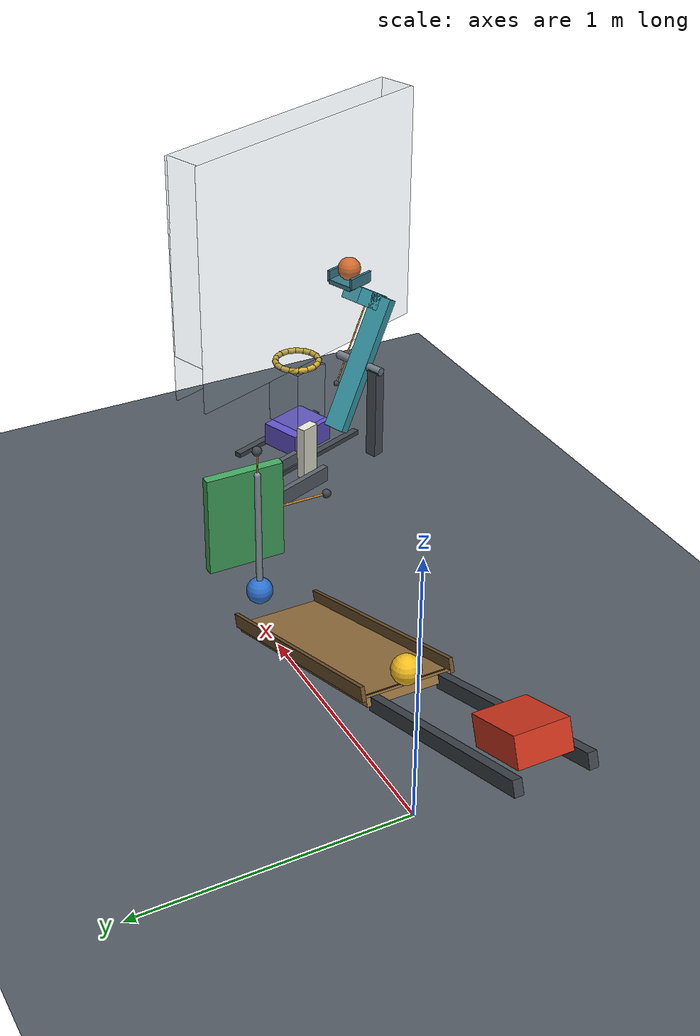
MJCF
<mujoco model="revised_chain_clearance">
  <compiler angle="degree" autolimits="true" inertiafromgeom="true"/>
  <option timestep="0.002" gravity="0 0 -9.81" integrator="implicitfast" solver="Newton" iterations="100" tolerance="1e-10"/>

  <visual>
    <global azimuth="135" elevation="-25"/>
    <headlight ambient="0.4 0.4 0.4" diffuse="0.7 0.7 0.7" specular="0.2 0.2 0.2"/>
  </visual>

  <!-- Contact damping approximates restitution 0.05. -->
  <!-- Explicit ball-floor contacts add rolling resistance without changing ramp contacts. -->
  <!-- Passive counterbalance and over-center springs assist the triggered stages. -->

  <worldbody>
    <light name="main_light" pos="0 -2 5" dir="0 0 -1" directional="true"/>
    <camera name="overview" pos="4 -5 3" xyaxes="0.780869 0.624695 0 -0.267261 0.334076 0.903696"/>
    <geom name="floor" type="plane" pos="0 0 0" size="5 5 0.1" friction="0.68 0.005 0.0001" condim="3" solref="0.008 0.690107" rgba="0.32 0.35 0.38 1"/>

    <!-- Initial axial spring compression is 0.20 m. -->
    <!-- The spherical nose reaches ball1 at approximately 0.50 m displacement. -->
    <body name="cart1" pos="-0.542789 0 0.764738" quat="0.984807753 0 0.173648178 0">
      <joint name="cart1_slide" type="slide" axis="1 0 0" range="0 0.60" stiffness="18" springref="0.20" damping="0.20" solreflimit="0.006 1"/>
      <geom name="cart1_chassis" type="box" pos="-0.01 0 0" size="0.11 0.09 0.05" mass="0.475" friction="0.68 0.005 0.0001" condim="3" solref="0.008 0.690107" rgba="0.85 0.22 0.12 1"/>
      <geom name="cart1_lifting_nose" type="sphere" pos="0.096557 0 -0.04" size="0.025" mass="0.025" friction="0.68 0.005 0.0001" condim="3" solref="0.008 0.690107" rgba="0.95 0.38 0.16 1"/>
    </body>

    <body name="cart1_track" pos="-0.315570 0 0.628828" quat="0.984807753 0 0.173648178 0">
      <geom name="cart1_track_left" type="box" pos="0 0.12 -0.025" size="0.42 0.015 0.025" contype="0" conaffinity="0" rgba="0.25 0.28 0.31 1"/>
      <geom name="cart1_track_right" type="box" pos="0 -0.12 -0.025" size="0.42 0.015 0.025" contype="0" conaffinity="0" rgba="0.25 0.28 0.31 1"/>
    </body>

    <!-- Surface length 1.00 m, width 0.30 m, inclination 20 degrees. -->
    <!-- Downhill surface endpoint is (1, 0, 0.15). -->
    <body name="ramp1" pos="0.525023 0 0.306915" quat="0.984807753 0 0.173648178 0">
      <geom name="ramp1_surface" type="box" size="0.50 0.15 0.015" friction="0.68 0.005 0.0001" condim="3" solref="0.008 0.690107" rgba="0.62 0.47 0.26 1"/>
      <geom name="ramp1_retaining_lip" type="cylinder" pos="-0.48 0 0.017" quat="0.707106781 0.707106781 0 0" size="0.002 0.145" friction="0.68 0.005 0.0001" condim="3" solref="0.008 0.690107" rgba="0.45 0.33 0.18 1"/>
      <geom name="ramp1_left_edge" type="box" pos="0 0.157 0.03" size="0.50 0.007 0.025" friction="0.68 0.005 0.0001" condim="3" solref="0.008 0.690107" rgba="0.45 0.33 0.18 1"/>
      <geom name="ramp1_right_edge" type="box" pos="0 -0.157 0.03" size="0.50 0.007 0.025" friction="0.68 0.005 0.0001" condim="3" solref="0.008 0.690107" rgba="0.45 0.33 0.18 1"/>
    </body>

    <body name="ball1" pos="0.077408 0 0.539005">
      <freejoint name="ball1_free"/>
      <geom name="ball1_sphere" type="sphere" size="0.05" mass="0.20" friction="0.68 0.005 0.0001" condim="3" solref="0.008 0.690107" rgba="0.96 0.74 0.12 1"/>
    </body>

    <!-- Initial nearest bob surface is 0.10 m beyond the ramp endpoint. -->
    <!-- Hinge-to-bob-center length 0.50 m; total mass 0.35 kg. -->
    <body name="pendulum1" pos="1.15 0 0.65">
      <joint name="pendulum1_hinge" type="hinge" axis="0 1 0" range="-42 0" damping="0.04" frictionloss="0.002" solreflimit="0.006 1"/>
      <geom name="pendulum1_rod" type="capsule" fromto="0 0 0 0 0 -0.45" size="0.012" mass="0.03" friction="0.68 0.005 0.0001" condim="3" solref="0.008 0.690107" rgba="0.55 0.59 0.64 1"/>
      <geom name="pendulum1_bob" type="sphere" pos="0 0 -0.50" size="0.05" mass="0.32" friction="0.68 0.005 0.0001" condim="3" solref="0.008 0.690107" rgba="0.18 0.45 0.82 1"/>
      <site name="pendulum1_spring_attachment" pos="0 0 -0.50" size="0.004" rgba="0.9 0.6 0.2 1"/>
    </body>

    <body name="pendulum1_anchor" pos="1.15 0 0.75">
      <geom name="pendulum1_anchor_cap" type="sphere" size="0.018" contype="0" conaffinity="0" rgba="0.25 0.28 0.31 1"/>
      <site name="pendulum1_spring_anchor" pos="0 0 0" size="0.004" rgba="0.9 0.6 0.2 1"/>
    </body>

    <!-- Door contact occurs at approximately 40 degrees of pendulum swing. -->
    <!-- Panel dimensions: 0.42 m high, 0.32 m wide, 0.04 m thick. -->
    <body name="door1" pos="1.541394 -0.28 0.002">
      <joint name="door1_hinge" type="hinge" axis="0 0 1" range="-70 0" damping="0.04" frictionloss="0.03" solreflimit="0.004 1" solimplimit="0.99 0.999 0.001"/>
      <geom name="door1_panel" type="box" pos="0 0.16 0.21" size="0.02 0.16 0.21" mass="0.45" friction="0.68 0.005 0.0001" condim="3" solref="0.008 0.690107" rgba="0.26 0.66 0.37 1"/>
      <site name="door1_spring_attachment" pos="0 0.30 0.21" size="0.004" rgba="0.9 0.6 0.2 1"/>
    </body>

    <body name="door1_anchor" pos="1.541394 -0.48 0.212">
      <geom name="door1_anchor_cap" type="sphere" size="0.018" contype="0" conaffinity="0" rgba="0.25 0.28 0.31 1"/>
      <site name="door1_spring_anchor" pos="0 0 0" size="0.004" rgba="0.9 0.6 0.2 1"/>
    </body>

    <!-- Downstream local x direction is (0.342020, -0.939693, 0). -->
    <body name="block1" pos="1.866032 -0.236331 0.06" quat="0.819152044 0 0 -0.573576436">
      <freejoint name="block1_free"/>
      <geom name="block1_cube" type="box" size="0.06 0.06 0.06" mass="0.35" friction="0.68 0.005 0.0001" condim="3" solref="0.008 0.690107" rgba="0.73 0.24 0.57 1"/>
    </body>

    <!-- Rails now start 0.10 m ahead of the initial block center. -->
    <!-- This leaves the complete door sweep unobstructed. -->
    <body name="block1_guide" pos="1.958377 -0.490048 0.035" quat="0.819152044 0 0 -0.573576436">
      <geom name="block1_guide_left" type="box" pos="0 0.085 0" size="0.17 0.012 0.035" friction="0.68 0.005 0.0001" condim="3" solref="0.008 0.690107" rgba="0.35 0.38 0.42 1"/>
      <geom name="block1_guide_right" type="box" pos="0 -0.085 0" size="0.17 0.012 0.035" friction="0.68 0.005 0.0001" condim="3" solref="0.008 0.690107" rgba="0.35 0.38 0.42 1"/>
    </body>

    <!-- Initial block-to-domino face separation is 0.32 m. -->
    <body name="domino1" pos="2.009680 -0.630002 0.12" quat="0.819152044 0 0 -0.573576436">
      <freejoint name="domino1_free"/>
      <geom name="domino1_tile" type="box" size="0.04 0.02 0.12" mass="0.25" friction="0.68 0.005 0.0001" condim="3" solref="0.008 0.690107" rgba="0.92 0.91 0.84 1"/>
    </body>

    <!-- Initial beam inclination is 60 degrees toward the right end. -->
    <!-- Its left endpoint lies 0.18 m downstream of domino1. -->
    <!-- Total lever mass, including its right-end tray, is 0.50 kg. -->
    <body name="lever1" pos="2.122547 -0.940101 0.409808" quat="0.709406480 -0.286788218 -0.409576022 -0.496731765">
      <joint name="lever1_hinge" type="hinge" axis="0 -1 0" range="0 45" damping="0.04" solreflimit="0.004 1" solimplimit="0.99 0.999 0.001"/>
      <geom name="lever1_beam" type="box" size="0.30 0.05 0.02" mass="0.44" conaffinity="3" friction="0.68 0.005 0.0001" condim="3" solref="0.008 0.690107" rgba="0.22 0.62 0.68 1"/>
      <geom name="lever1_outrigger" type="box" pos="0.27 0.10 0" size="0.035 0.10 0.02" mass="0.02" conaffinity="3" friction="0.68 0.005 0.0001" condim="3" solref="0.008 0.690107" rgba="0.22 0.62 0.68 1"/>
      <geom name="lever1_ball_platform" type="box" pos="0.308660 0.20 0.005" quat="0.866025404 0 0.5 0" size="0.062 0.060 0.010" mass="0.025" conaffinity="3" friction="0.68 0.005 0.0001" condim="3" solref="0.008 0.690107" rgba="0.18 0.49 0.55 1"/>
      <geom name="lever1_platform_left" type="box" pos="0.330311 0.265 0.0175" quat="0.866025404 0 0.5 0" size="0.062 0.006 0.025" mass="0.0075" conaffinity="3" friction="0.68 0.005 0.0001" condim="3" solref="0.008 0.690107" rgba="0.18 0.49 0.55 1"/>
      <geom name="lever1_platform_right" type="box" pos="0.330311 0.135 0.0175" quat="0.866025404 0 0.5 0" size="0.062 0.006 0.025" mass="0.0075" conaffinity="3" friction="0.68 0.005 0.0001" condim="3" solref="0.008 0.690107" rgba="0.18 0.49 0.55 1"/>
      <site name="lever1_spring_attachment" pos="0.24 0.08 0" size="0.004" rgba="0.9 0.6 0.2 1"/>
    </body>

    <body name="lever1_support" pos="2.122547 -0.940101 0.204904" quat="0.819152044 0 0 -0.573576436">
      <geom name="lever1_support_post" type="box" pos="0 -0.09 0" size="0.025 0.025 0.204904" contype="0" conaffinity="0" rgba="0.30 0.33 0.37 1"/>
      <geom name="lever1_support_axle" type="cylinder" pos="0 0 0.204904" quat="0.707106781 0.707106781 0 0" size="0.018 0.12" contype="0" conaffinity="0" rgba="0.45 0.49 0.54 1"/>
    </body>

    <body name="lever1_anchor" pos="2.177201 -0.856357 0.305885">
      <geom name="lever1_anchor_cap" type="sphere" size="0.012" contype="0" conaffinity="0" rgba="0.25 0.28 0.31 1"/>
      <site name="lever1_spring_anchor" pos="0 0 0" size="0.004" rgba="0.9 0.6 0.2 1"/>
    </body>

    <body name="ball2" pos="2.361789 -1.012651 0.739808">
      <freejoint name="ball2_free"/>
      <geom name="ball2_sphere" type="sphere" size="0.05" mass="0.20" contype="2" conaffinity="13" friction="0.68 0.005 0.0001" condim="3" solref="0.008 0.690107" rgba="0.95 0.43 0.12 1"/>
    </body>

    <!-- Capsule ring has approximately 0.160 m minimum clear diameter. -->
    <!-- Its center is 0.32 m below ball2's initial center. -->
    <body name="ring1" pos="2.248922 -0.702552 0.419808">
      <geom name="ring1_segment00" type="capsule" fromto="0.093807 0 0 0.086668 0.035899 0" size="0.012" contype="4" conaffinity="2" friction="0.68 0.005 0.0001" condim="3" solref="0.008 0.690107" rgba="0.83 0.69 0.19 1"/>
      <geom name="ring1_segment01" type="capsule" fromto="0.086668 0.035899 0 0.066331 0.066331 0" size="0.012" contype="4" conaffinity="2" friction="0.68 0.005 0.0001" condim="3" solref="0.008 0.690107" rgba="0.83 0.69 0.19 1"/>
      <geom name="ring1_segment02" type="capsule" fromto="0.066331 0.066331 0 0.035899 0.086668 0" size="0.012" contype="4" conaffinity="2" friction="0.68 0.005 0.0001" condim="3" solref="0.008 0.690107" rgba="0.83 0.69 0.19 1"/>
      <geom name="ring1_segment03" type="capsule" fromto="0.035899 0.086668 0 0 0.093807 0" size="0.012" contype="4" conaffinity="2" friction="0.68 0.005 0.0001" condim="3" solref="0.008 0.690107" rgba="0.83 0.69 0.19 1"/>
      <geom name="ring1_segment04" type="capsule" fromto="0 0.093807 0 -0.035899 0.086668 0" size="0.012" contype="4" conaffinity="2" friction="0.68 0.005 0.0001" condim="3" solref="0.008 0.690107" rgba="0.83 0.69 0.19 1"/>
      <geom name="ring1_segment05" type="capsule" fromto="-0.035899 0.086668 0 -0.066331 0.066331 0" size="0.012" contype="4" conaffinity="2" friction="0.68 0.005 0.0001" condim="3" solref="0.008 0.690107" rgba="0.83 0.69 0.19 1"/>
      <geom name="ring1_segment06" type="capsule" fromto="-0.066331 0.066331 0 -0.086668 0.035899 0" size="0.012" contype="4" conaffinity="2" friction="0.68 0.005 0.0001" condim="3" solref="0.008 0.690107" rgba="0.83 0.69 0.19 1"/>
      <geom name="ring1_segment07" type="capsule" fromto="-0.086668 0.035899 0 -0.093807 0 0" size="0.012" contype="4" conaffinity="2" friction="0.68 0.005 0.0001" condim="3" solref="0.008 0.690107" rgba="0.83 0.69 0.19 1"/>
      <geom name="ring1_segment08" type="capsule" fromto="-0.093807 0 0 -0.086668 -0.035899 0" size="0.012" contype="4" conaffinity="2" friction="0.68 0.005 0.0001" condim="3" solref="0.008 0.690107" rgba="0.83 0.69 0.19 1"/>
      <geom name="ring1_segment09" type="capsule" fromto="-0.086668 -0.035899 0 -0.066331 -0.066331 0" size="0.012" contype="4" conaffinity="2" friction="0.68 0.005 0.0001" condim="3" solref="0.008 0.690107" rgba="0.83 0.69 0.19 1"/>
      <geom name="ring1_segment10" type="capsule" fromto="-0.066331 -0.066331 0 -0.035899 -0.086668 0" size="0.012" contype="4" conaffinity="2" friction="0.68 0.005 0.0001" condim="3" solref="0.008 0.690107" rgba="0.83 0.69 0.19 1"/>
      <geom name="ring1_segment11" type="capsule" fromto="-0.035899 -0.086668 0 0 -0.093807 0" size="0.012" contype="4" conaffinity="2" friction="0.68 0.005 0.0001" condim="3" solref="0.008 0.690107" rgba="0.83 0.69 0.19 1"/>
      <geom name="ring1_segment12" type="capsule" fromto="0 -0.093807 0 0.035899 -0.086668 0" size="0.012" contype="4" conaffinity="2" friction="0.68 0.005 0.0001" condim="3" solref="0.008 0.690107" rgba="0.83 0.69 0.19 1"/>
      <geom name="ring1_segment13" type="capsule" fromto="0.035899 -0.086668 0 0.066331 -0.066331 0" size="0.012" contype="4" conaffinity="2" friction="0.68 0.005 0.0001" condim="3" solref="0.008 0.690107" rgba="0.83 0.69 0.19 1"/>
      <geom name="ring1_segment14" type="capsule" fromto="0.066331 -0.066331 0 0.086668 -0.035899 0" size="0.012" contype="4" conaffinity="2" friction="0.68 0.005 0.0001" condim="3" solref="0.008 0.690107" rgba="0.83 0.69 0.19 1"/>
      <geom name="ring1_segment15" type="capsule" fromto="0.086668 -0.035899 0 0.093807 0 0" size="0.012" contype="4" conaffinity="2" friction="0.68 0.005 0.0001" condim="3" solref="0.008 0.690107" rgba="0.83 0.69 0.19 1"/>
    </body>

    <!-- Passive catch channel and downstream sleeve interact only with ball2. -->
    <body name="ball2_guide" pos="2.248922 -0.702552 0.419808" quat="0.819152044 0 0 -0.573576436">
      <geom name="ball2_guide_right_slope" type="box" pos="0.3275 0 0.130192" quat="0.819911 0 0.572491 0" size="0.006 0.082 0.290269" contype="4" conaffinity="2" friction="0.68 0.005 0.0001" condim="3" solref="0.008 0.690107" rgba="0.55 0.65 0.72 0.25"/>
      <geom name="ball2_guide_left_slope" type="box" pos="-0.3275 0 0.130192" quat="0.819911 0 -0.572491 0" size="0.006 0.082 0.290269" contype="4" conaffinity="2" friction="0.68 0.005 0.0001" condim="3" solref="0.008 0.690107" rgba="0.55 0.65 0.72 0.25"/>
      <geom name="ball2_guide_right_wall" type="box" pos="0.615 0 0.655192" size="0.006 0.082 0.425" contype="4" conaffinity="2" friction="0.68 0.005 0.0001" condim="3" solref="0.008 0.690107" rgba="0.55 0.65 0.72 0.18"/>
      <geom name="ball2_guide_left_wall" type="box" pos="-0.615 0 0.655192" size="0.006 0.082 0.425" contype="4" conaffinity="2" friction="0.68 0.005 0.0001" condim="3" solref="0.008 0.690107" rgba="0.55 0.65 0.72 0.18"/>
      <geom name="ball2_guide_front_wall" type="box" pos="0 0.082 0.555192" size="0.621 0.006 0.525" contype="4" conaffinity="2" friction="0.68 0.005 0.0001" condim="3" solref="0.008 0.690107" rgba="0.55 0.65 0.72 0.12"/>
      <geom name="ball2_guide_back_wall" type="box" pos="0 -0.082 0.555192" size="0.621 0.006 0.525" contype="4" conaffinity="2" friction="0.68 0.005 0.0001" condim="3" solref="0.008 0.690107" rgba="0.55 0.65 0.72 0.12"/>
      <geom name="ball2_guide_sleeve_right" type="box" pos="0.082 0 -0.149808" size="0.006 0.082 0.13" contype="4" conaffinity="2" friction="0.68 0.005 0.0001" condim="3" solref="0.008 0.690107" rgba="0.55 0.65 0.72 0.18"/>
      <geom name="ball2_guide_sleeve_left" type="box" pos="-0.082 0 -0.149808" size="0.006 0.082 0.13" contype="4" conaffinity="2" friction="0.68 0.005 0.0001" condim="3" solref="0.008 0.690107" rgba="0.55 0.65 0.72 0.18"/>
      <geom name="ball2_guide_sleeve_front" type="box" pos="0 0.082 -0.149808" size="0.082 0.006 0.13" contype="4" conaffinity="2" friction="0.68 0.005 0.0001" condim="3" solref="0.008 0.690107" rgba="0.55 0.65 0.72 0.18"/>
      <geom name="ball2_guide_sleeve_back" type="box" pos="0 -0.082 -0.149808" size="0.082 0.006 0.13" contype="4" conaffinity="2" friction="0.68 0.005 0.0001" condim="3" solref="0.008 0.690107" rgba="0.55 0.65 0.72 0.18"/>
    </body>

    <!-- Ball center at top-face contact is 0.25 m below ring center. -->
    <body name="cart2" pos="2.248922 -0.702552 0.069808" quat="0.819152044 0 0 -0.573576436">
      <joint name="cart2_slide" type="slide" axis="1 0 0" range="-0.04 0.04" damping="0.20" solreflimit="0.006 1"/>
      <geom name="cart2_chassis" type="box" size="0.11 0.09 0.05" mass="0.50" contype="8" conaffinity="3" friction="0.68 0.005 0.0001" condim="3" solref="0.008 0.690107" rgba="0.38 0.32 0.79 1"/>
    </body>

    <body name="cart2_track" pos="2.248922 -0.702552 0.01" quat="0.819152044 0 0 -0.573576436">
      <geom name="cart2_track_left" type="box" pos="0 0.12 0" size="0.25 0.015 0.01" contype="0" conaffinity="0" rgba="0.25 0.28 0.31 1"/>
      <geom name="cart2_track_right" type="box" pos="0 -0.12 0" size="0.25 0.015 0.01" contype="0" conaffinity="0" rgba="0.25 0.28 0.31 1"/>
    </body>
  </worldbody>

  <contact>
    <exclude name="cart1_ramp_clearance" body1="cart1" body2="ramp1"/>
    <pair name="ball1_floor_rolling_contact" geom1="floor" geom2="ball1_sphere" condim="6" friction="0.68 0.68 0.005 0.003 0.003" solref="0.008 0.690107"/>
    <pair name="ball2_floor_rolling_contact" geom1="floor" geom2="ball2_sphere" condim="6" friction="0.68 0.68 0.005 0.003 0.003" solref="0.008 0.690107"/>
    <pair name="ball2_cart2_rolling_contact" geom1="cart2_chassis" geom2="ball2_sphere" condim="6" friction="0.68 0.68 0.005 0.003 0.003" solref="0.008 0.690107"/>
  </contact>

  <tendon>
    <spatial name="pendulum1_counterbalance_spring" stiffness="50" springlength="0.20" damping="0" width="0.003" rgba="0.85 0.58 0.20 1">
      <site site="pendulum1_spring_anchor"/>
      <site site="pendulum1_spring_attachment"/>
    </spatial>
    <spatial name="door1_overcenter_spring" stiffness="180" springlength="0.15" damping="0" width="0.004" rgba="0.85 0.58 0.20 1">
      <site site="door1_spring_anchor"/>
      <site site="door1_spring_attachment"/>
    </spatial>
    <spatial name="lever1_overcenter_spring" stiffness="200" springlength="0.10" damping="0" width="0.003" rgba="0.85 0.58 0.20 1">
      <site site="lever1_spring_anchor"/>
      <site site="lever1_spring_attachment"/>
    </spatial>
  </tendon>

  <!-- Initial configurations come from qpos0; all initial velocities are zero. -->
  <keyframe>
    <key name="start" time="0"/>
  </keyframe>
</mujoco>
